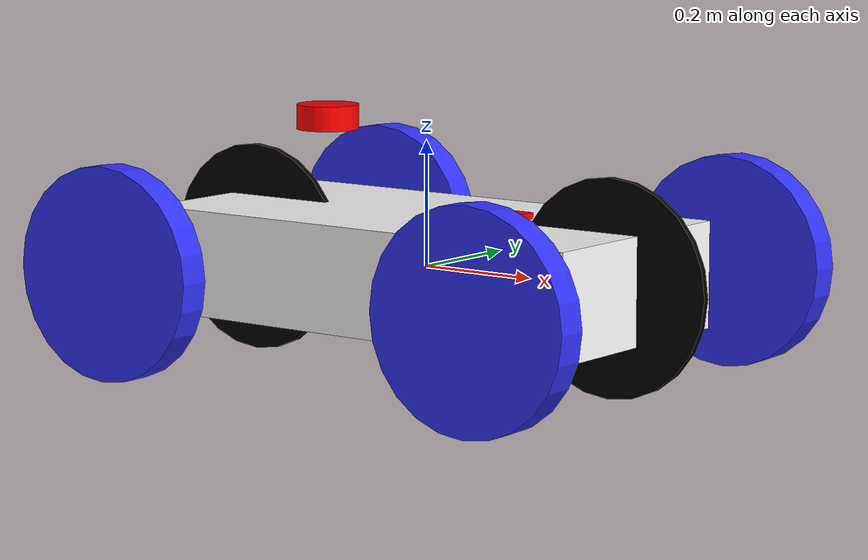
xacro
<?xml version="1.0"?>
<robot xmlns:xacro="http://www.ros.org/wiki/xacro"  name="robot">

    <!-- Example link -->
    <xacro:include filename="ackrm_robot.urdf.xacro"/>
    <xacro:include filename="cylinder_pivot.xacro"/>
    <xacro:include filename="cylinder_wheel.xacro"/>
    <xacro:include filename="inertia.xacro"/>
    <xacro:include filename="inertial_macros.xacro"/>
    <xacro:include filename="lidar.xacro"/>
    <xacro:include filename="imu.urdf.xacro"/>
    <xacro:include filename="properties.xacro"/>

        <!-- Control -->
    <!--xacro:include filename="gazebo_control.xacro"/-->
    <xacro:include filename="ros_control.xacro"/>

</robot>

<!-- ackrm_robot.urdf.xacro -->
<robot name="ackrm_robot"
  xmlns:xacro="http://ros.org/wiki/xacro">

  <!--MATERIALS-->

  <!-- XACRO PROPERTIES -->
  <xacro:property name="PI" value="3.1415926535897931"/>
  <xacro:property name="base_length" value="0.8" />
  <xacro:property name="base_width" value="0.4" />
  <xacro:property name="base_heigth" value="0.17" />
  <xacro:property name="base_mass" value="${base_length*base_width*base_heigth*500}" />
  <xacro:property name="wheel_radius" value="0.17" />
  <xacro:property name="wheel_heigth" value="0.05" />
  <xacro:property name="wheel_mass" value="${pi*wheel_radius*wheel_radius*wheel_heigth*500}" />
  <xacro:property name="pivot_radius" value="${wheel_heigth/2-0.01}" />
  <xacro:property name="pivot_heigth" value="${1.4*wheel_radius}" />
  <xacro:property name="pivot_mass" value="${pi*pivot_radius*pivot_radius*pivot_heigth*500}" />

  <!-- XACRO LIBRARIES -->
  <xacro:include filename="inertia.xacro" />
  <xacro:include filename="cylinder_wheel.xacro" />

<!-- Example link -->
<link name="base_root">
</link>

<joint name="base_root_joint" type="fixed">
  <parent link="base_root"/>
  <child link="base_link"/>
  <origin xyz="0 0 0"/>
</joint>

  <!-- BASE LINK DEFINITION -->
  <link name="base_link">
    <visual>
      <geometry>
        <box size="${base_length} ${base_width} ${base_heigth}" />
      </geometry>
      <material name="white" />
    </visual>
    <collision>
      <geometry>
        <box size="${base_length} ${base_width} ${base_heigth}" />
      </geometry>
    </collision>
    <inertial>
      <mass value="${base_mass}" />
      <origin rpy="0 0 0" xyz="0 0 0" />
      <xacro:box_inertia m="${base_mass}" l="${base_length}" w="${base_width}" h="${base_heigth}"/>
    </inertial>
  </link>

  <!-- VIRTUAL WHEELS-->
  <!-- virtual front wheel -->

  <link name="virtual_front_wheel">
    <visual>
      <origin xyz="0 0 0" rpy="${PI/2} 0 ${PI/2}"/>
      <geometry>
        <cylinder length="0.01" radius="${wheel_radius}"/>
      </geometry>
      <material name="invisible"/>
    </visual>
  </link>

  <joint name="virtual_front_wheel_joint" type="revolute">
    <parent link="base_link"/>
    <child link="virtual_front_wheel"/>
    <origin xyz="0.35 0 0" rpy="0 0 ${PI/2}"/>
    <axis xyz="0 0 1"/>
    <limit lower="-${PI/4}" upper="${PI/4}" effort="100.0" velocity="0.0"/>
    <dynamics damping="0.2"/>
  </joint>

  <!-- virtual back wheel -->

  <link name="virtual_back_wheel">
    <visual>
      <origin xyz="0 0 0" rpy="${PI/2} 0 ${PI/2}"/>
      <geometry>
        <cylinder length="0.01" radius="${wheel_radius}"/>
      </geometry>
      <material name="invisible"/>
    </visual>
  </link>

  <joint name="virtual_back_wheel_joint" type="continuous">
    <parent link="base_link"/>
    <child link="virtual_back_wheel"/>
    <origin xyz="-0.35 0 0" rpy="0 0 ${PI/2}"/>
    <axis xyz="1 0 0"/>
    <limit effort="100.0" velocity="100.0"/>
    <dynamics damping="0.2"/>
  </joint>

  <!-- WHEELS MACRO CALL -->
  <xacro:cylinder_wheel name="back_right"
    wr="${wheel_radius}"
    wh="${wheel_heigth}"
    wm="${wheel_mass}"
    parent="base_link"
    xpos="-0.35"
    ypos="-0.35"
    mimic="back"
    axis= "1 0 0"/>

  <xacro:cylinder_wheel name="back_left"
    wr="${wheel_radius}"
    wh="${wheel_heigth}"
    wm="${wheel_mass}"
    parent="base_link"
    xpos="-0.35"
    ypos="0.35"
    mimic="back"
    axis="1 0 0"/>

  <xacro:cylinder_wheel name="front_right"
    wr="${wheel_radius}"
    wh="${wheel_heigth}"
    wm="${wheel_mass}"
    parent="base_link"
    xpos="0.35"
    ypos="0.35"
    mimic="front"
    axis="0 0 1"/>

  <xacro:cylinder_wheel name="front_left"
    wr="${wheel_radius}"
    wh="${wheel_heigth}"
    wm="${wheel_mass}"
    parent="base_link"
    xpos="0.35"
    ypos="-0.35"
    mimic="front"
    axis="0 0 1"/>

</robot>

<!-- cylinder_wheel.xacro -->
<robot name="cylinder_wheel"
  xmlns:xacro="http://www.ros.org/wiki/xacro">

  <xacro:include filename="inertia.xacro" />

  <xacro:macro name="cylinder_wheel" params="name wr wh wm parent xpos ypos mimic axis">
    <link name="${name}_wheel">
      <visual>
        <geometry>
          <cylinder length="${wh}" radius="${wr}" />
        </geometry>
        <origin rpy="1.57 0 0" xyz="0 0 0" />
        <material name="blue" />
      </visual>
      <collision>
        <geometry>
          <cylinder length="${wh}" radius="${wr}" />
        </geometry>
        <origin rpy="1.57 0 0" xyz="0 0 0" />
      </collision>
      <inertial>
        <mass value="${wm}" />
        <origin rpy="1.57 0 0" xyz="0 0 0" />
        <xacro:cylinder_inertia m="${wm}" r="${wr}" h="${wh}" />
      </inertial>
    </link>

    <joint name="${name}_wheel_joint" type="continuous">
      <parent link="${parent}" />
      <child link="${name}_wheel" />
      <origin xyz="${xpos} ${ypos} 0" rpy="0 0 0" />
      <axis xyz="${axis}" rpy="0 0 0" />
      <limit effort="1000" velocity="100" />
      <joint_properties damping="0.0" friction="10.0" />
      <mimic joint="virtual_${mimic}_wheel_joint" multiplier="1.0" offset="0.0"/>
    </joint>

    <transmission name="${name}_wheel_trans">
      <type>transmission_interface/SimpleTransmission</type>
      <joint name="${name}_wheel_joint">
        <hardwareInterface>hardware_interface/VelocityJointInterface</hardwareInterface>
      </joint>
      <actuator name="${name}_wheel_motor">
        <mechanicalReduction>1</mechanicalReduction>
      </actuator>
    </transmission>

    <gazebo reference="${name}_wheel">
      <mu1 value="200.0" />
      <mu2 value="100.0" />
      <fdir1 value="1 0 0" />
      <kp value="10000000.0" />
      <kd value="1.0" />
      <material>Gazebo/Blue</material>
      <turnGravityOff>false</turnGravityOff>
    </gazebo>
  </xacro:macro>

</robot>

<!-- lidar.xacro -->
<robot xmlns:xacro="http://www.ros.org/wiki/xacro">

    <!-- lidar joint -->
    <joint name="laser_joint" type="fixed">
        <parent link="base_link"/>
        <child link="laser_frame"/>
        <origin xyz="-0.2 0 0.225" rpy="0 0 0"/>
    </joint>

    <!-- laser_frame -->
    <link name="laser_frame">
        <visual>
            <geometry>
                <cylinder radius="0.05" length="0.04"/>
            </geometry>
            <material name="red"/>
        </visual>
        <collision>
            <geometry>
                <cylinder radius="0.05" length="0.04"/>
            </geometry>
        </collision>
        <xacro:inertial_cylinder mass="0.1" length="0.04" radius="0.05">
            <origin xyz="0 0 0" rpy="0 0 0"/>
        </xacro:inertial_cylinder>
    </link>

    <gazebo reference="laser_frame">
        <material>Gazebo/Red</material>
        <sensor name="laser" type="ray">
            <pose>0 0 0 0 0 0</pose>
            <visualize>true</visualize>
            <update_rate>10</update_rate>
            <ray>
                <scan>
                    <horizontal>
												<!--samples> is the number of simulated lidar rays to generate per complete laser sweep cycle.-->
                        <samples>360</samples>
												<!--resolution>: this number is multiplied by samples to determine the number range data points.-->
                        <resolution>1</resolution>
							          <min_angle>-3.14</min_angle>
                        <max_angle>3.14</max_angle>
                    </horizontal>
                </scan>
                <range>
                    <min>0.3</min>
                    <max>12</max>
                    <resolution>0.01</resolution>
                </range>
            </ray>
            <plugin name="laser_controller" filename="libgazebo_ros_ray_sensor.so">
                <ros>
                    <remapping>~/out:=/alpha/scan</remapping>
                </ros>
                <output_type>sensor_msgs/LaserScan</output_type>
                <frame_name>laser_frame</frame_name>
            </plugin>
        </sensor>
    </gazebo>

</robot>

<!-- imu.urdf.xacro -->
<robot xmlns:xacro="http://www.ros.org/wiki/xacro">

    <!-- Imu_frame -->
    <link name="imu_frame">
        <visual>
            <origin xyz="0 0 -0.005"/>
            <geometry>
                <box size="0.1 0.1 0.01"/>
            </geometry>
            <material name="red"/>
        </visual>
        <xacro:inertial_box mass="0.005" x="0.1" y="0.1" z="0.01">
            <origin xyz="0 0 -0.005" rpy="0 0 0"/>
        </xacro:inertial_box>
        <collision>
            <origin xyz="0 0 0"/>
            <geometry>
                <box size="0.1 0.1 0.01"/>
            </geometry>
        </collision>
    </link>

    <!-- Imu joint -->
    <joint name="imu_joint" type="fixed">
        <parent link="base_link"/>
        <child link="imu_frame"/>
        <origin xyz="0.12 0 0.095" rpy="0 0 0"/>
    </joint>

    <gazebo reference="imu_frame">
        <material>Gazebo/Red</material>
        <gravity>true</gravity>
        <sensor name="imu_sensor" type="imu">
            <always_on>true</always_on>
            <update_rate>10</update_rate>
            <visualize>true</visualize>
            <!--Sensor will be published for the default topic-->
            <topic>__default_topic__</topic>
            <plugin filename="libgazebo_ros_imu_sensor.so" name="imu_plugin">
                <!--Sensor data will be published for the default topic-->
                <topicName>imu</topicName>
                <bodyName>imu_frame</bodyName>
                <updateRateHZ>10.0</updateRateHZ>
                <gaussianNoise>0.0</gaussianNoise>
                <!--Offsets from the reference link reference frame-->
                <xyzOffset>0 0 0</xyzOffset>
                <rpyOffset>0 0 0</rpyOffset>
                <frameName>imu_frame</frameName>
                <!--Sensor doesn't calibrate to the initial position-->
                <!--So world is tajen as reference-->
                <initialOrientationAsReference>false</initialOrientationAsReference>
                <ros>
                    <!--Output topic: scan-->
                    <remapping>~/out:=/alpha/imu</remapping>
                </ros>

            </plugin>
            <pose>0 0 0 0 0 0</pose>
        </sensor>
  </gazebo>

</robot>

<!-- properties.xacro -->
<robot xmlns:xacro="http://www.ros.org/wiki/xacro">
    <!-- Color Definitions -->
    <material name="white">
        <color rgba= "1 1 1 1"/>
    </material>

    <material name="orange">
        <color rgba= "1 0.3 0.1 1"/>
    </material>

    <material name="blue">
        <color rgba= "0.2 0.2 1 1"/>
    </material>

    <material name="black">
        <color rgba= "0 0 0 1"/>
    </material>

    <material name="red">
        <color rgba= "1 0 0 1"/>
    </material>

    <material name="invisible">
        <color rgba="0.0 0.0 0.0 0.0"/>
    </material>

</robot>
